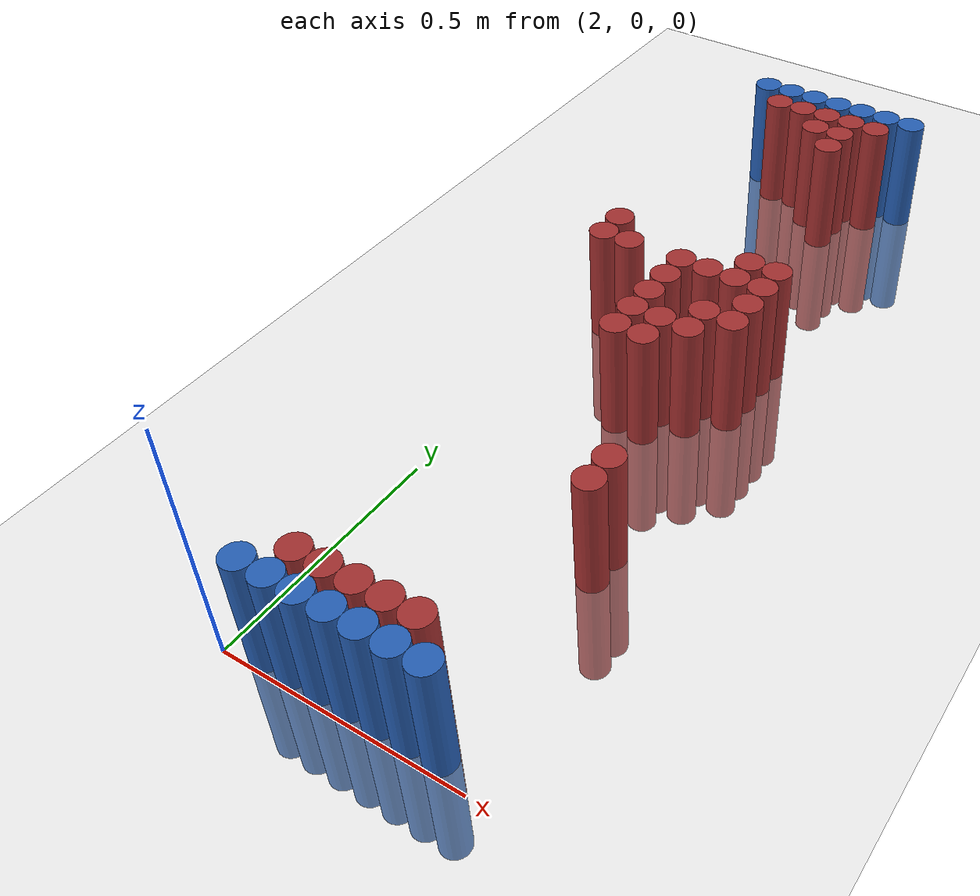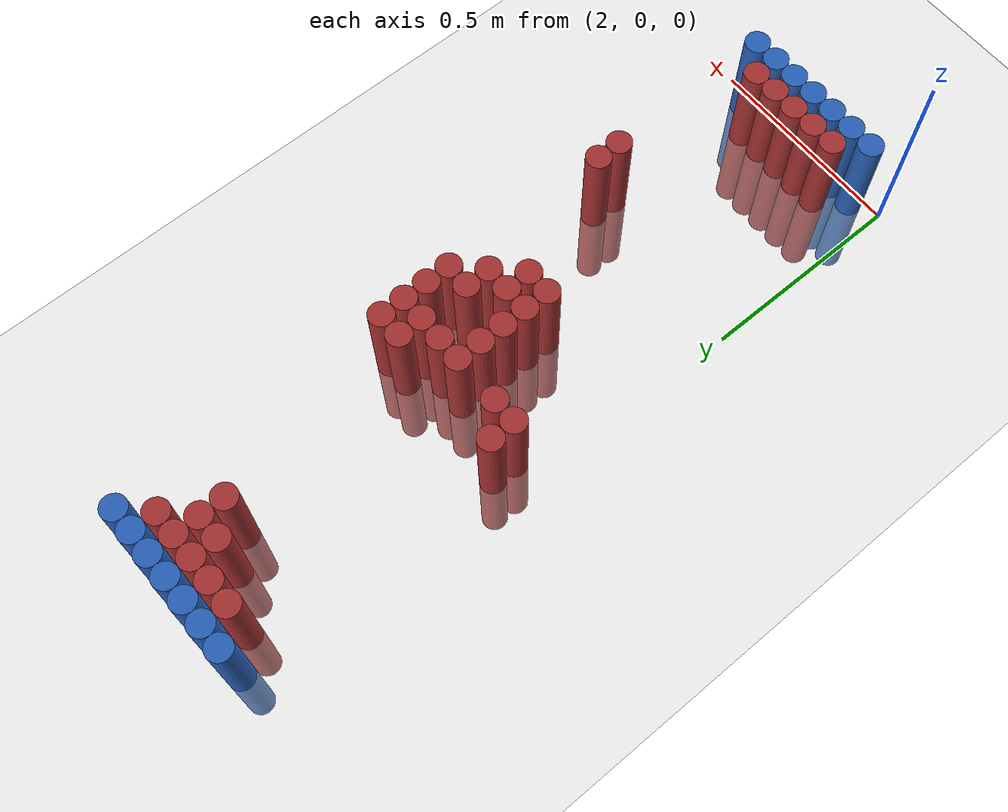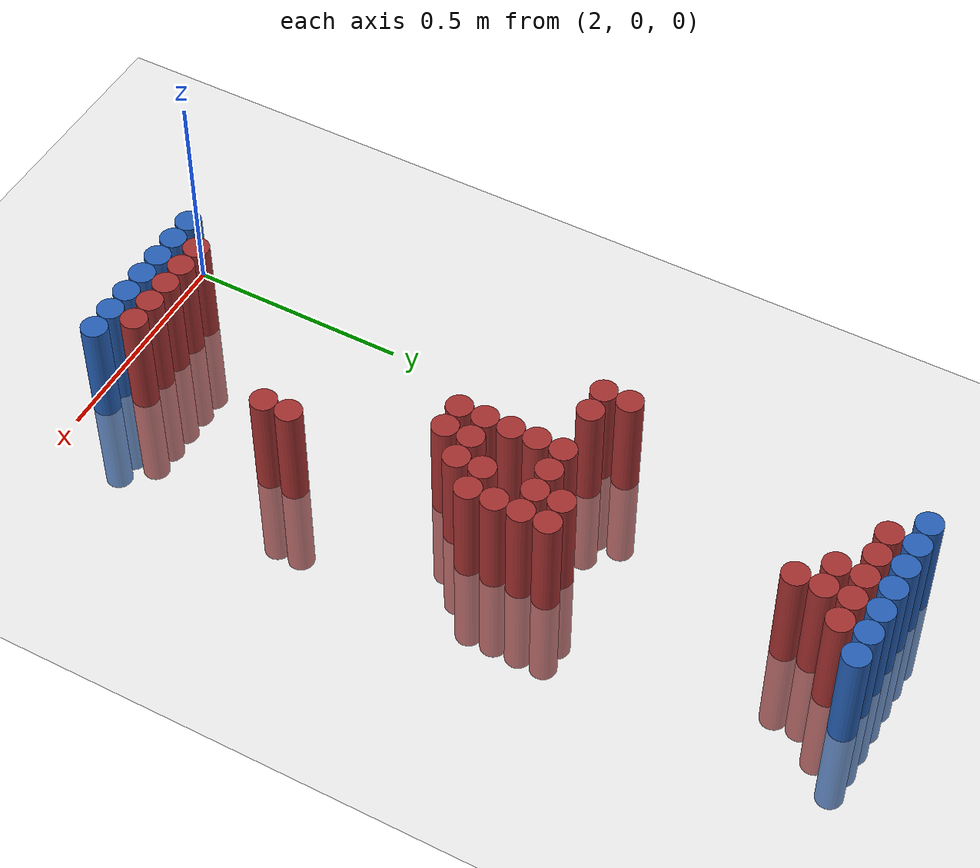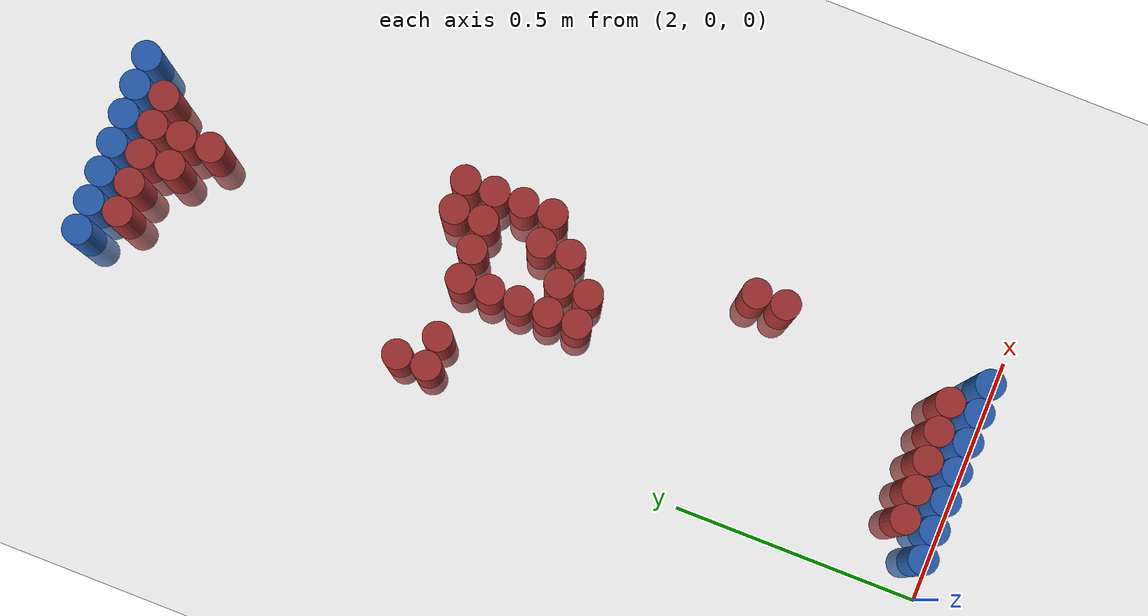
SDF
<sdf version="1.6">
 <world name="default">
  <model name="ground_plane">
   <static>1</static>
   <link name="link">
    <collision name="collision">
     <geometry><plane><normal>0 0 1</normal><size>100 100</size></plane></geometry>
     <surface><friction><ode><mu>100</mu><mu2>50</mu2></ode></friction></surface>
    </collision>
    <visual name="visual">
     <cast_shadows>0</cast_shadows>
     <geometry><plane><normal>0 0 1</normal><size>100 100</size></plane></geometry>
     <material>
      <script><uri>file://media/materials/scripts/gazebo.material</uri><name>Gazebo/Grey</name></script>
     </material>
    </visual>
   </link>
  </model>
  <model name="unit_cylinder_95">
   <static>1</static>
   <pose>2.070000 1.770000 0.000000 0.000000 0.000000 0.000000</pose>
   <link name="link">
    <inertial>
     <mass>1</mass>
     <inertia><ixx>0.145833</ixx><ixy>0</ixy><ixz>0</ixz><iyy>0.145833</iyy><iyz>0</iyz><izz>0.125</izz></inertia>
    </inertial>
    <collision name="collision">
     <geometry><cylinder><radius>0.030000</radius><length>0.5</length></cylinder></geometry>
    </collision>
    <visual name="visual">
     <geometry><cylinder><radius>0.030000</radius><length>0.5</length></cylinder></geometry>
     <material>
      <ambient>0.152000 0.379000 0.720000 1</ambient>
      <diffuse>0.152000 0.379000 0.720000 1</diffuse>
     </material>
     <material>
      <script><name>Gazebo/Grey</name><uri>file://media/materials/scripts/gazebo.material</uri></script>
     </material>
    </visual>
   </link>
  </model>
  <model name="unit_cylinder_96">
   <static>1</static>
   <pose>2.130000 1.770000 0.000000 0.000000 0.000000 0.000000</pose>
   <link name="link">
    <inertial>
     <mass>1</mass>
     <inertia><ixx>0.145833</ixx><ixy>0</ixy><ixz>0</ixz><iyy>0.145833</iyy><iyz>0</iyz><izz>0.125</izz></inertia>
    </inertial>
    <collision name="collision">
     <geometry><cylinder><radius>0.030000</radius><length>0.5</length></cylinder></geometry>
    </collision>
    <visual name="visual">
     <geometry><cylinder><radius>0.030000</radius><length>0.5</length></cylinder></geometry>
     <material>
      <ambient>0.152000 0.379000 0.720000 1</ambient>
      <diffuse>0.152000 0.379000 0.720000 1</diffuse>
     </material>
     <material>
      <script><name>Gazebo/Grey</name><uri>file://media/materials/scripts/gazebo.material</uri></script>
     </material>
    </visual>
   </link>
  </model>
  <model name="unit_cylinder_97">
   <static>1</static>
   <pose>2.190000 1.770000 0.000000 0.000000 0.000000 0.000000</pose>
   <link name="link">
    <inertial>
     <mass>1</mass>
     <inertia><ixx>0.145833</ixx><ixy>0</ixy><ixz>0</ixz><iyy>0.145833</iyy><iyz>0</iyz><izz>0.125</izz></inertia>
    </inertial>
    <collision name="collision">
     <geometry><cylinder><radius>0.030000</radius><length>0.5</length></cylinder></geometry>
    </collision>
    <visual name="visual">
     <geometry><cylinder><radius>0.030000</radius><length>0.5</length></cylinder></geometry>
     <material>
      <ambient>0.152000 0.379000 0.720000 1</ambient>
      <diffuse>0.152000 0.379000 0.720000 1</diffuse>
     </material>
     <material>
      <script><name>Gazebo/Grey</name><uri>file://media/materials/scripts/gazebo.material</uri></script>
     </material>
    </visual>
   </link>
  </model>
  <model name="unit_cylinder_98">
   <static>1</static>
   <pose>2.250000 1.770000 0.000000 0.000000 0.000000 0.000000</pose>
   <link name="link">
    <inertial>
     <mass>1</mass>
     <inertia><ixx>0.145833</ixx><ixy>0</ixy><ixz>0</ixz><iyy>0.145833</iyy><iyz>0</iyz><izz>0.125</izz></inertia>
    </inertial>
    <collision name="collision">
     <geometry><cylinder><radius>0.030000</radius><length>0.5</length></cylinder></geometry>
    </collision>
    <visual name="visual">
     <geometry><cylinder><radius>0.030000</radius><length>0.5</length></cylinder></geometry>
     <material>
      <ambient>0.152000 0.379000 0.720000 1</ambient>
      <diffuse>0.152000 0.379000 0.720000 1</diffuse>
     </material>
     <material>
      <script><name>Gazebo/Grey</name><uri>file://media/materials/scripts/gazebo.material</uri></script>
     </material>
    </visual>
   </link>
  </model>
  <model name="unit_cylinder_99">
   <static>1</static>
   <pose>2.310000 1.770000 0.000000 0.000000 0.000000 0.000000</pose>
   <link name="link">
    <inertial>
     <mass>1</mass>
     <inertia><ixx>0.145833</ixx><ixy>0</ixy><ixz>0</ixz><iyy>0.145833</iyy><iyz>0</iyz><izz>0.125</izz></inertia>
    </inertial>
    <collision name="collision">
     <geometry><cylinder><radius>0.030000</radius><length>0.5</length></cylinder></geometry>
    </collision>
    <visual name="visual">
     <geometry><cylinder><radius>0.030000</radius><length>0.5</length></cylinder></geometry>
     <material>
      <ambient>0.152000 0.379000 0.720000 1</ambient>
      <diffuse>0.152000 0.379000 0.720000 1</diffuse>
     </material>
     <material>
      <script><name>Gazebo/Grey</name><uri>file://media/materials/scripts/gazebo.material</uri></script>
     </material>
    </visual>
   </link>
  </model>
  <model name="unit_cylinder_100">
   <static>1</static>
   <pose>2.370000 1.770000 0.000000 0.000000 0.000000 0.000000</pose>
   <link name="link">
    <inertial>
     <mass>1</mass>
     <inertia><ixx>0.145833</ixx><ixy>0</ixy><ixz>0</ixz><iyy>0.145833</iyy><iyz>0</iyz><izz>0.125</izz></inertia>
    </inertial>
    <collision name="collision">
     <geometry><cylinder><radius>0.030000</radius><length>0.5</length></cylinder></geometry>
    </collision>
    <visual name="visual">
     <geometry><cylinder><radius>0.030000</radius><length>0.5</length></cylinder></geometry>
     <material>
      <ambient>0.152000 0.379000 0.720000 1</ambient>
      <diffuse>0.152000 0.379000 0.720000 1</diffuse>
     </material>
     <material>
      <script><name>Gazebo/Grey</name><uri>file://media/materials/scripts/gazebo.material</uri></script>
     </material>
    </visual>
   </link>
  </model>
  <model name="unit_cylinder_101">
   <static>1</static>
   <pose>2.430000 1.770000 0.000000 0.000000 0.000000 0.000000</pose>
   <link name="link">
    <inertial>
     <mass>1</mass>
     <inertia><ixx>0.145833</ixx><ixy>0</ixy><ixz>0</ixz><iyy>0.145833</iyy><iyz>0</iyz><izz>0.125</izz></inertia>
    </inertial>
    <collision name="collision">
     <geometry><cylinder><radius>0.030000</radius><length>0.5</length></cylinder></geometry>
    </collision>
    <visual name="visual">
     <geometry><cylinder><radius>0.030000</radius><length>0.5</length></cylinder></geometry>
     <material>
      <ambient>0.152000 0.379000 0.720000 1</ambient>
      <diffuse>0.152000 0.379000 0.720000 1</diffuse>
     </material>
     <material>
      <script><name>Gazebo/Grey</name><uri>file://media/materials/scripts/gazebo.material</uri></script>
     </material>
    </visual>
   </link>
  </model>
  <model name="unit_cylinder_125">
   <static>1</static>
   <pose>2.130000 1.710000 0.000000 0.000000 0.000000 0.000000</pose>
   <link name="link">
    <inertial>
     <mass>1</mass>
     <inertia><ixx>0.145833</ixx><ixy>0</ixy><ixz>0</ixz><iyy>0.145833</iyy><iyz>0</iyz><izz>0.125</izz></inertia>
    </inertial>
    <collision name="collision">
     <geometry><cylinder><radius>0.030000</radius><length>0.5</length></cylinder></geometry>
    </collision>
    <visual name="visual">
     <geometry><cylinder><radius>0.030000</radius><length>0.5</length></cylinder></geometry>
     <material>
      <ambient>0.648000 0.192000 0.192000 1</ambient>
      <diffuse>0.648000 0.192000 0.192000 1</diffuse>
     </material>
     <material>
      <script><name>Gazebo/Grey</name><uri>file://media/materials/scripts/gazebo.material</uri></script>
     </material>
    </visual>
   </link>
  </model>
  <model name="unit_cylinder_126">
   <static>1</static>
   <pose>2.190000 1.710000 0.000000 0.000000 0.000000 0.000000</pose>
   <link name="link">
    <inertial>
     <mass>1</mass>
     <inertia><ixx>0.145833</ixx><ixy>0</ixy><ixz>0</ixz><iyy>0.145833</iyy><iyz>0</iyz><izz>0.125</izz></inertia>
    </inertial>
    <collision name="collision">
     <geometry><cylinder><radius>0.030000</radius><length>0.5</length></cylinder></geometry>
    </collision>
    <visual name="visual">
     <geometry><cylinder><radius>0.030000</radius><length>0.5</length></cylinder></geometry>
     <material>
      <ambient>0.648000 0.192000 0.192000 1</ambient>
      <diffuse>0.648000 0.192000 0.192000 1</diffuse>
     </material>
     <material>
      <script><name>Gazebo/Grey</name><uri>file://media/materials/scripts/gazebo.material</uri></script>
     </material>
    </visual>
   </link>
  </model>
  <model name="unit_cylinder_127">
   <static>1</static>
   <pose>2.250000 1.710000 0.000000 0.000000 0.000000 0.000000</pose>
   <link name="link">
    <inertial>
     <mass>1</mass>
     <inertia><ixx>0.145833</ixx><ixy>0</ixy><ixz>0</ixz><iyy>0.145833</iyy><iyz>0</iyz><izz>0.125</izz></inertia>
    </inertial>
    <collision name="collision">
     <geometry><cylinder><radius>0.030000</radius><length>0.5</length></cylinder></geometry>
    </collision>
    <visual name="visual">
     <geometry><cylinder><radius>0.030000</radius><length>0.5</length></cylinder></geometry>
     <material>
      <ambient>0.648000 0.192000 0.192000 1</ambient>
      <diffuse>0.648000 0.192000 0.192000 1</diffuse>
     </material>
     <material>
      <script><name>Gazebo/Grey</name><uri>file://media/materials/scripts/gazebo.material</uri></script>
     </material>
    </visual>
   </link>
  </model>
  <model name="unit_cylinder_128">
   <static>1</static>
   <pose>2.310000 1.710000 0.000000 0.000000 0.000000 0.000000</pose>
   <link name="link">
    <inertial>
     <mass>1</mass>
     <inertia><ixx>0.145833</ixx><ixy>0</ixy><ixz>0</ixz><iyy>0.145833</iyy><iyz>0</iyz><izz>0.125</izz></inertia>
    </inertial>
    <collision name="collision">
     <geometry><cylinder><radius>0.030000</radius><length>0.5</length></cylinder></geometry>
    </collision>
    <visual name="visual">
     <geometry><cylinder><radius>0.030000</radius><length>0.5</length></cylinder></geometry>
     <material>
      <ambient>0.648000 0.192000 0.192000 1</ambient>
      <diffuse>0.648000 0.192000 0.192000 1</diffuse>
     </material>
     <material>
      <script><name>Gazebo/Grey</name><uri>file://media/materials/scripts/gazebo.material</uri></script>
     </material>
    </visual>
   </link>
  </model>
  <model name="unit_cylinder_129">
   <static>1</static>
   <pose>2.370000 1.710000 0.000000 0.000000 0.000000 0.000000</pose>
   <link name="link">
    <inertial>
     <mass>1</mass>
     <inertia><ixx>0.145833</ixx><ixy>0</ixy><ixz>0</ixz><iyy>0.145833</iyy><iyz>0</iyz><izz>0.125</izz></inertia>
    </inertial>
    <collision name="collision">
     <geometry><cylinder><radius>0.030000</radius><length>0.5</length></cylinder></geometry>
    </collision>
    <visual name="visual">
     <geometry><cylinder><radius>0.030000</radius><length>0.5</length></cylinder></geometry>
     <material>
      <ambient>0.648000 0.192000 0.192000 1</ambient>
      <diffuse>0.648000 0.192000 0.192000 1</diffuse>
     </material>
     <material>
      <script><name>Gazebo/Grey</name><uri>file://media/materials/scripts/gazebo.material</uri></script>
     </material>
    </visual>
   </link>
  </model>
  <model name="unit_cylinder_140">
   <static>1</static>
   <pose>2.250000 1.650000 0.000000 0.000000 0.000000 0.000000</pose>
   <link name="link">
    <inertial>
     <mass>1</mass>
     <inertia><ixx>0.145833</ixx><ixy>0</ixy><ixz>0</ixz><iyy>0.145833</iyy><iyz>0</iyz><izz>0.125</izz></inertia>
    </inertial>
    <collision name="collision">
     <geometry><cylinder><radius>0.030000</radius><length>0.5</length></cylinder></geometry>
    </collision>
    <visual name="visual">
     <geometry><cylinder><radius>0.030000</radius><length>0.5</length></cylinder></geometry>
     <material>
      <ambient>0.648000 0.192000 0.192000 1</ambient>
      <diffuse>0.648000 0.192000 0.192000 1</diffuse>
     </material>
     <material>
      <script><name>Gazebo/Grey</name><uri>file://media/materials/scripts/gazebo.material</uri></script>
     </material>
    </visual>
   </link>
  </model>
  <model name="unit_cylinder_141">
   <static>1</static>
   <pose>2.310000 1.650000 0.000000 0.000000 0.000000 0.000000</pose>
   <link name="link">
    <inertial>
     <mass>1</mass>
     <inertia><ixx>0.145833</ixx><ixy>0</ixy><ixz>0</ixz><iyy>0.145833</iyy><iyz>0</iyz><izz>0.125</izz></inertia>
    </inertial>
    <collision name="collision">
     <geometry><cylinder><radius>0.030000</radius><length>0.5</length></cylinder></geometry>
    </collision>
    <visual name="visual">
     <geometry><cylinder><radius>0.030000</radius><length>0.5</length></cylinder></geometry>
     <material>
      <ambient>0.648000 0.192000 0.192000 1</ambient>
      <diffuse>0.648000 0.192000 0.192000 1</diffuse>
     </material>
     <material>
      <script><name>Gazebo/Grey</name><uri>file://media/materials/scripts/gazebo.material</uri></script>
     </material>
    </visual>
   </link>
  </model>
  <model name="unit_cylinder_151">
   <static>1</static>
   <pose>2.310000 1.590000 0.000000 0.000000 0.000000 0.000000</pose>
   <link name="link">
    <inertial>
     <mass>1</mass>
     <inertia><ixx>0.145833</ixx><ixy>0</ixy><ixz>0</ixz><iyy>0.145833</iyy><iyz>0</iyz><izz>0.125</izz></inertia>
    </inertial>
    <collision name="collision">
     <geometry><cylinder><radius>0.030000</radius><length>0.5</length></cylinder></geometry>
    </collision>
    <visual name="visual">
     <geometry><cylinder><radius>0.030000</radius><length>0.5</length></cylinder></geometry>
     <material>
      <ambient>0.648000 0.192000 0.192000 1</ambient>
      <diffuse>0.648000 0.192000 0.192000 1</diffuse>
     </material>
     <material>
      <script><name>Gazebo/Grey</name><uri>file://media/materials/scripts/gazebo.material</uri></script>
     </material>
    </visual>
   </link>
  </model>
  <model name="unit_cylinder_172">
   <static>1</static>
   <pose>2.070000 1.110000 0.000000 0.000000 0.000000 0.000000</pose>
   <link name="link">
    <inertial>
     <mass>1</mass>
     <inertia><ixx>0.145833</ixx><ixy>0</ixy><ixz>0</ixz><iyy>0.145833</iyy><iyz>0</iyz><izz>0.125</izz></inertia>
    </inertial>
    <collision name="collision">
     <geometry><cylinder><radius>0.030000</radius><length>0.5</length></cylinder></geometry>
    </collision>
    <visual name="visual">
     <geometry><cylinder><radius>0.030000</radius><length>0.5</length></cylinder></geometry>
     <material>
      <ambient>0.648000 0.192000 0.192000 1</ambient>
      <diffuse>0.648000 0.192000 0.192000 1</diffuse>
     </material>
     <material>
      <script><name>Gazebo/Grey</name><uri>file://media/materials/scripts/gazebo.material</uri></script>
     </material>
    </visual>
   </link>
  </model>
  <model name="unit_cylinder_173">
   <static>1</static>
   <pose>2.370000 1.110000 0.000000 0.000000 0.000000 0.000000</pose>
   <link name="link">
    <inertial>
     <mass>1</mass>
     <inertia><ixx>0.145833</ixx><ixy>0</ixy><ixz>0</ixz><iyy>0.145833</iyy><iyz>0</iyz><izz>0.125</izz></inertia>
    </inertial>
    <collision name="collision">
     <geometry><cylinder><radius>0.030000</radius><length>0.5</length></cylinder></geometry>
    </collision>
    <visual name="visual">
     <geometry><cylinder><radius>0.030000</radius><length>0.5</length></cylinder></geometry>
     <material>
      <ambient>0.648000 0.192000 0.192000 1</ambient>
      <diffuse>0.648000 0.192000 0.192000 1</diffuse>
     </material>
     <material>
      <script><name>Gazebo/Grey</name><uri>file://media/materials/scripts/gazebo.material</uri></script>
     </material>
    </visual>
   </link>
  </model>
  <model name="unit_cylinder_174">
   <static>1</static>
   <pose>2.430000 1.110000 0.000000 0.000000 0.000000 0.000000</pose>
   <link name="link">
    <inertial>
     <mass>1</mass>
     <inertia><ixx>0.145833</ixx><ixy>0</ixy><ixz>0</ixz><iyy>0.145833</iyy><iyz>0</iyz><izz>0.125</izz></inertia>
    </inertial>
    <collision name="collision">
     <geometry><cylinder><radius>0.030000</radius><length>0.5</length></cylinder></geometry>
    </collision>
    <visual name="visual">
     <geometry><cylinder><radius>0.030000</radius><length>0.5</length></cylinder></geometry>
     <material>
      <ambient>0.648000 0.192000 0.192000 1</ambient>
      <diffuse>0.648000 0.192000 0.192000 1</diffuse>
     </material>
     <material>
      <script><name>Gazebo/Grey</name><uri>file://media/materials/scripts/gazebo.material</uri></script>
     </material>
    </visual>
   </link>
  </model>
  <model name="unit_cylinder_179">
   <static>1</static>
   <pose>2.070000 1.050000 0.000000 0.000000 0.000000 0.000000</pose>
   <link name="link">
    <inertial>
     <mass>1</mass>
     <inertia><ixx>0.145833</ixx><ixy>0</ixy><ixz>0</ixz><iyy>0.145833</iyy><iyz>0</iyz><izz>0.125</izz></inertia>
    </inertial>
    <collision name="collision">
     <geometry><cylinder><radius>0.030000</radius><length>0.5</length></cylinder></geometry>
    </collision>
    <visual name="visual">
     <geometry><cylinder><radius>0.030000</radius><length>0.5</length></cylinder></geometry>
     <material>
      <ambient>0.648000 0.192000 0.192000 1</ambient>
      <diffuse>0.648000 0.192000 0.192000 1</diffuse>
     </material>
     <material>
      <script><name>Gazebo/Grey</name><uri>file://media/materials/scripts/gazebo.material</uri></script>
     </material>
    </visual>
   </link>
  </model>
  <model name="unit_cylinder_180">
   <static>1</static>
   <pose>2.130000 1.050000 0.000000 0.000000 0.000000 0.000000</pose>
   <link name="link">
    <inertial>
     <mass>1</mass>
     <inertia><ixx>0.145833</ixx><ixy>0</ixy><ixz>0</ixz><iyy>0.145833</iyy><iyz>0</iyz><izz>0.125</izz></inertia>
    </inertial>
    <collision name="collision">
     <geometry><cylinder><radius>0.030000</radius><length>0.5</length></cylinder></geometry>
    </collision>
    <visual name="visual">
     <geometry><cylinder><radius>0.030000</radius><length>0.5</length></cylinder></geometry>
     <material>
      <ambient>0.648000 0.192000 0.192000 1</ambient>
      <diffuse>0.648000 0.192000 0.192000 1</diffuse>
     </material>
     <material>
      <script><name>Gazebo/Grey</name><uri>file://media/materials/scripts/gazebo.material</uri></script>
     </material>
    </visual>
   </link>
  </model>
  <model name="unit_cylinder_181">
   <static>1</static>
   <pose>2.250000 1.050000 0.000000 0.000000 0.000000 0.000000</pose>
   <link name="link">
    <inertial>
     <mass>1</mass>
     <inertia><ixx>0.145833</ixx><ixy>0</ixy><ixz>0</ixz><iyy>0.145833</iyy><iyz>0</iyz><izz>0.125</izz></inertia>
    </inertial>
    <collision name="collision">
     <geometry><cylinder><radius>0.030000</radius><length>0.5</length></cylinder></geometry>
    </collision>
    <visual name="visual">
     <geometry><cylinder><radius>0.030000</radius><length>0.5</length></cylinder></geometry>
     <material>
      <ambient>0.648000 0.192000 0.192000 1</ambient>
      <diffuse>0.648000 0.192000 0.192000 1</diffuse>
     </material>
     <material>
      <script><name>Gazebo/Grey</name><uri>file://media/materials/scripts/gazebo.material</uri></script>
     </material>
    </visual>
   </link>
  </model>
  <model name="unit_cylinder_182">
   <static>1</static>
   <pose>2.310000 1.050000 0.000000 0.000000 0.000000 0.000000</pose>
   <link name="link">
    <inertial>
     <mass>1</mass>
     <inertia><ixx>0.145833</ixx><ixy>0</ixy><ixz>0</ixz><iyy>0.145833</iyy><iyz>0</iyz><izz>0.125</izz></inertia>
    </inertial>
    <collision name="collision">
     <geometry><cylinder><radius>0.030000</radius><length>0.5</length></cylinder></geometry>
    </collision>
    <visual name="visual">
     <geometry><cylinder><radius>0.030000</radius><length>0.5</length></cylinder></geometry>
     <material>
      <ambient>0.648000 0.192000 0.192000 1</ambient>
      <diffuse>0.648000 0.192000 0.192000 1</diffuse>
     </material>
     <material>
      <script><name>Gazebo/Grey</name><uri>file://media/materials/scripts/gazebo.material</uri></script>
     </material>
    </visual>
   </link>
  </model>
  <model name="unit_cylinder_183">
   <static>1</static>
   <pose>2.370000 1.050000 0.000000 0.000000 0.000000 0.000000</pose>
   <link name="link">
    <inertial>
     <mass>1</mass>
     <inertia><ixx>0.145833</ixx><ixy>0</ixy><ixz>0</ixz><iyy>0.145833</iyy><iyz>0</iyz><izz>0.125</izz></inertia>
    </inertial>
    <collision name="collision">
     <geometry><cylinder><radius>0.030000</radius><length>0.5</length></cylinder></geometry>
    </collision>
    <visual name="visual">
     <geometry><cylinder><radius>0.030000</radius><length>0.5</length></cylinder></geometry>
     <material>
      <ambient>0.648000 0.192000 0.192000 1</ambient>
      <diffuse>0.648000 0.192000 0.192000 1</diffuse>
     </material>
     <material>
      <script><name>Gazebo/Grey</name><uri>file://media/materials/scripts/gazebo.material</uri></script>
     </material>
    </visual>
   </link>
  </model>
  <model name="unit_cylinder_184">
   <static>1</static>
   <pose>2.430000 1.050000 0.000000 0.000000 0.000000 0.000000</pose>
   <link name="link">
    <inertial>
     <mass>1</mass>
     <inertia><ixx>0.145833</ixx><ixy>0</ixy><ixz>0</ixz><iyy>0.145833</iyy><iyz>0</iyz><izz>0.125</izz></inertia>
    </inertial>
    <collision name="collision">
     <geometry><cylinder><radius>0.030000</radius><length>0.5</length></cylinder></geometry>
    </collision>
    <visual name="visual">
     <geometry><cylinder><radius>0.030000</radius><length>0.5</length></cylinder></geometry>
     <material>
      <ambient>0.648000 0.192000 0.192000 1</ambient>
      <diffuse>0.648000 0.192000 0.192000 1</diffuse>
     </material>
     <material>
      <script><name>Gazebo/Grey</name><uri>file://media/materials/scripts/gazebo.material</uri></script>
     </material>
    </visual>
   </link>
  </model>
  <model name="unit_cylinder_192">
   <static>1</static>
   <pose>2.250000 0.990000 0.000000 0.000000 0.000000 0.000000</pose>
   <link name="link">
    <inertial>
     <mass>1</mass>
     <inertia><ixx>0.145833</ixx><ixy>0</ixy><ixz>0</ixz><iyy>0.145833</iyy><iyz>0</iyz><izz>0.125</izz></inertia>
    </inertial>
    <collision name="collision">
     <geometry><cylinder><radius>0.030000</radius><length>0.5</length></cylinder></geometry>
    </collision>
    <visual name="visual">
     <geometry><cylinder><radius>0.030000</radius><length>0.5</length></cylinder></geometry>
     <material>
      <ambient>0.648000 0.192000 0.192000 1</ambient>
      <diffuse>0.648000 0.192000 0.192000 1</diffuse>
     </material>
     <material>
      <script><name>Gazebo/Grey</name><uri>file://media/materials/scripts/gazebo.material</uri></script>
     </material>
    </visual>
   </link>
  </model>
  <model name="unit_cylinder_193">
   <static>1</static>
   <pose>2.430000 0.990000 0.000000 0.000000 0.000000 0.000000</pose>
   <link name="link">
    <inertial>
     <mass>1</mass>
     <inertia><ixx>0.145833</ixx><ixy>0</ixy><ixz>0</ixz><iyy>0.145833</iyy><iyz>0</iyz><izz>0.125</izz></inertia>
    </inertial>
    <collision name="collision">
     <geometry><cylinder><radius>0.030000</radius><length>0.5</length></cylinder></geometry>
    </collision>
    <visual name="visual">
     <geometry><cylinder><radius>0.030000</radius><length>0.5</length></cylinder></geometry>
     <material>
      <ambient>0.648000 0.192000 0.192000 1</ambient>
      <diffuse>0.648000 0.192000 0.192000 1</diffuse>
     </material>
     <material>
      <script><name>Gazebo/Grey</name><uri>file://media/materials/scripts/gazebo.material</uri></script>
     </material>
    </visual>
   </link>
  </model>
  <model name="unit_cylinder_202">
   <static>1</static>
   <pose>2.250000 0.930000 0.000000 0.000000 0.000000 0.000000</pose>
   <link name="link">
    <inertial>
     <mass>1</mass>
     <inertia><ixx>0.145833</ixx><ixy>0</ixy><ixz>0</ixz><iyy>0.145833</iyy><iyz>0</iyz><izz>0.125</izz></inertia>
    </inertial>
    <collision name="collision">
     <geometry><cylinder><radius>0.030000</radius><length>0.5</length></cylinder></geometry>
    </collision>
    <visual name="visual">
     <geometry><cylinder><radius>0.030000</radius><length>0.5</length></cylinder></geometry>
     <material>
      <ambient>0.648000 0.192000 0.192000 1</ambient>
      <diffuse>0.648000 0.192000 0.192000 1</diffuse>
     </material>
     <material>
      <script><name>Gazebo/Grey</name><uri>file://media/materials/scripts/gazebo.material</uri></script>
     </material>
    </visual>
   </link>
  </model>
  <model name="unit_cylinder_203">
   <static>1</static>
   <pose>2.370000 0.930000 0.000000 0.000000 0.000000 0.000000</pose>
   <link name="link">
    <inertial>
     <mass>1</mass>
     <inertia><ixx>0.145833</ixx><ixy>0</ixy><ixz>0</ixz><iyy>0.145833</iyy><iyz>0</iyz><izz>0.125</izz></inertia>
    </inertial>
    <collision name="collision">
     <geometry><cylinder><radius>0.030000</radius><length>0.5</length></cylinder></geometry>
    </collision>
    <visual name="visual">
     <geometry><cylinder><radius>0.030000</radius><length>0.5</length></cylinder></geometry>
     <material>
      <ambient>0.648000 0.192000 0.192000 1</ambient>
      <diffuse>0.648000 0.192000 0.192000 1</diffuse>
     </material>
     <material>
      <script><name>Gazebo/Grey</name><uri>file://media/materials/scripts/gazebo.material</uri></script>
     </material>
    </visual>
   </link>
  </model>
  <model name="unit_cylinder_204">
   <static>1</static>
   <pose>2.430000 0.930000 0.000000 0.000000 0.000000 0.000000</pose>
   <link name="link">
    <inertial>
     <mass>1</mass>
     <inertia><ixx>0.145833</ixx><ixy>0</ixy><ixz>0</ixz><iyy>0.145833</iyy><iyz>0</iyz><izz>0.125</izz></inertia>
    </inertial>
    <collision name="collision">
     <geometry><cylinder><radius>0.030000</radius><length>0.5</length></cylinder></geometry>
    </collision>
    <visual name="visual">
     <geometry><cylinder><radius>0.030000</radius><length>0.5</length></cylinder></geometry>
     <material>
      <ambient>0.648000 0.192000 0.192000 1</ambient>
      <diffuse>0.648000 0.192000 0.192000 1</diffuse>
     </material>
     <material>
      <script><name>Gazebo/Grey</name><uri>file://media/materials/scripts/gazebo.material</uri></script>
     </material>
    </visual>
   </link>
  </model>
  <model name="unit_cylinder_213">
   <static>1</static>
   <pose>2.250000 0.870000 0.000000 0.000000 0.000000 0.000000</pose>
   <link name="link">
    <inertial>
     <mass>1</mass>
     <inertia><ixx>0.145833</ixx><ixy>0</ixy><ixz>0</ixz><iyy>0.145833</iyy><iyz>0</iyz><izz>0.125</izz></inertia>
    </inertial>
    <collision name="collision">
     <geometry><cylinder><radius>0.030000</radius><length>0.5</length></cylinder></geometry>
    </collision>
    <visual name="visual">
     <geometry><cylinder><radius>0.030000</radius><length>0.5</length></cylinder></geometry>
     <material>
      <ambient>0.648000 0.192000 0.192000 1</ambient>
      <diffuse>0.648000 0.192000 0.192000 1</diffuse>
     </material>
     <material>
      <script><name>Gazebo/Grey</name><uri>file://media/materials/scripts/gazebo.material</uri></script>
     </material>
    </visual>
   </link>
  </model>
  <model name="unit_cylinder_214">
   <static>1</static>
   <pose>2.310000 0.870000 0.000000 0.000000 0.000000 0.000000</pose>
   <link name="link">
    <inertial>
     <mass>1</mass>
     <inertia><ixx>0.145833</ixx><ixy>0</ixy><ixz>0</ixz><iyy>0.145833</iyy><iyz>0</iyz><izz>0.125</izz></inertia>
    </inertial>
    <collision name="collision">
     <geometry><cylinder><radius>0.030000</radius><length>0.5</length></cylinder></geometry>
    </collision>
    <visual name="visual">
     <geometry><cylinder><radius>0.030000</radius><length>0.5</length></cylinder></geometry>
     <material>
      <ambient>0.648000 0.192000 0.192000 1</ambient>
      <diffuse>0.648000 0.192000 0.192000 1</diffuse>
     </material>
     <material>
      <script><name>Gazebo/Grey</name><uri>file://media/materials/scripts/gazebo.material</uri></script>
     </material>
    </visual>
   </link>
  </model>
  <model name="unit_cylinder_215">
   <static>1</static>
   <pose>2.370000 0.870000 0.000000 0.000000 0.000000 0.000000</pose>
   <link name="link">
    <inertial>
     <mass>1</mass>
     <inertia><ixx>0.145833</ixx><ixy>0</ixy><ixz>0</ixz><iyy>0.145833</iyy><iyz>0</iyz><izz>0.125</izz></inertia>
    </inertial>
    <collision name="collision">
     <geometry><cylinder><radius>0.030000</radius><length>0.5</length></cylinder></geometry>
    </collision>
    <visual name="visual">
     <geometry><cylinder><radius>0.030000</radius><length>0.5</length></cylinder></geometry>
     <material>
      <ambient>0.648000 0.192000 0.192000 1</ambient>
      <diffuse>0.648000 0.192000 0.192000 1</diffuse>
     </material>
     <material>
      <script><name>Gazebo/Grey</name><uri>file://media/materials/scripts/gazebo.material</uri></script>
     </material>
    </visual>
   </link>
  </model>
  <model name="unit_cylinder_228">
   <static>1</static>
   <pose>2.250000 0.810000 0.000000 0.000000 0.000000 0.000000</pose>
   <link name="link">
    <inertial>
     <mass>1</mass>
     <inertia><ixx>0.145833</ixx><ixy>0</ixy><ixz>0</ixz><iyy>0.145833</iyy><iyz>0</iyz><izz>0.125</izz></inertia>
    </inertial>
    <collision name="collision">
     <geometry><cylinder><radius>0.030000</radius><length>0.5</length></cylinder></geometry>
    </collision>
    <visual name="visual">
     <geometry><cylinder><radius>0.030000</radius><length>0.5</length></cylinder></geometry>
     <material>
      <ambient>0.648000 0.192000 0.192000 1</ambient>
      <diffuse>0.648000 0.192000 0.192000 1</diffuse>
     </material>
     <material>
      <script><name>Gazebo/Grey</name><uri>file://media/materials/scripts/gazebo.material</uri></script>
     </material>
    </visual>
   </link>
  </model>
  <model name="unit_cylinder_229">
   <static>1</static>
   <pose>2.310000 0.810000 0.000000 0.000000 0.000000 0.000000</pose>
   <link name="link">
    <inertial>
     <mass>1</mass>
     <inertia><ixx>0.145833</ixx><ixy>0</ixy><ixz>0</ixz><iyy>0.145833</iyy><iyz>0</iyz><izz>0.125</izz></inertia>
    </inertial>
    <collision name="collision">
     <geometry><cylinder><radius>0.030000</radius><length>0.5</length></cylinder></geometry>
    </collision>
    <visual name="visual">
     <geometry><cylinder><radius>0.030000</radius><length>0.5</length></cylinder></geometry>
     <material>
      <ambient>0.648000 0.192000 0.192000 1</ambient>
      <diffuse>0.648000 0.192000 0.192000 1</diffuse>
     </material>
     <material>
      <script><name>Gazebo/Grey</name><uri>file://media/materials/scripts/gazebo.material</uri></script>
     </material>
    </visual>
   </link>
  </model>
  <model name="unit_cylinder_259">
   <static>1</static>
   <pose>2.430000 0.510000 0.000000 0.000000 0.000000 0.000000</pose>
   <link name="link">
    <inertial>
     <mass>1</mass>
     <inertia><ixx>0.145833</ixx><ixy>0</ixy><ixz>0</ixz><iyy>0.145833</iyy><iyz>0</iyz><izz>0.125</izz></inertia>
    </inertial>
    <collision name="collision">
     <geometry><cylinder><radius>0.030000</radius><length>0.5</length></cylinder></geometry>
    </collision>
    <visual name="visual">
     <geometry><cylinder><radius>0.030000</radius><length>0.5</length></cylinder></geometry>
     <material>
      <ambient>0.648000 0.192000 0.192000 1</ambient>
      <diffuse>0.648000 0.192000 0.192000 1</diffuse>
     </material>
     <material>
      <script><name>Gazebo/Grey</name><uri>file://media/materials/scripts/gazebo.material</uri></script>
     </material>
    </visual>
   </link>
  </model>
  <model name="unit_cylinder_266">
   <static>1</static>
   <pose>2.430000 0.450000 0.000000 0.000000 0.000000 0.000000</pose>
   <link name="link">
    <inertial>
     <mass>1</mass>
     <inertia><ixx>0.145833</ixx><ixy>0</ixy><ixz>0</ixz><iyy>0.145833</iyy><iyz>0</iyz><izz>0.125</izz></inertia>
    </inertial>
    <collision name="collision">
     <geometry><cylinder><radius>0.030000</radius><length>0.5</length></cylinder></geometry>
    </collision>
    <visual name="visual">
     <geometry><cylinder><radius>0.030000</radius><length>0.5</length></cylinder></geometry>
     <material>
      <ambient>0.648000 0.192000 0.192000 1</ambient>
      <diffuse>0.648000 0.192000 0.192000 1</diffuse>
     </material>
     <material>
      <script><name>Gazebo/Grey</name><uri>file://media/materials/scripts/gazebo.material</uri></script>
     </material>
    </visual>
   </link>
  </model>
  <model name="unit_cylinder_287">
   <static>1</static>
   <pose>2.130000 0.090000 0.000000 0.000000 0.000000 0.000000</pose>
   <link name="link">
    <inertial>
     <mass>1</mass>
     <inertia><ixx>0.145833</ixx><ixy>0</ixy><ixz>0</ixz><iyy>0.145833</iyy><iyz>0</iyz><izz>0.125</izz></inertia>
    </inertial>
    <collision name="collision">
     <geometry><cylinder><radius>0.030000</radius><length>0.5</length></cylinder></geometry>
    </collision>
    <visual name="visual">
     <geometry><cylinder><radius>0.030000</radius><length>0.5</length></cylinder></geometry>
     <material>
      <ambient>0.648000 0.192000 0.192000 1</ambient>
      <diffuse>0.648000 0.192000 0.192000 1</diffuse>
     </material>
     <material>
      <script><name>Gazebo/Grey</name><uri>file://media/materials/scripts/gazebo.material</uri></script>
     </material>
    </visual>
   </link>
  </model>
  <model name="unit_cylinder_288">
   <static>1</static>
   <pose>2.190000 0.090000 0.000000 0.000000 0.000000 0.000000</pose>
   <link name="link">
    <inertial>
     <mass>1</mass>
     <inertia><ixx>0.145833</ixx><ixy>0</ixy><ixz>0</ixz><iyy>0.145833</iyy><iyz>0</iyz><izz>0.125</izz></inertia>
    </inertial>
    <collision name="collision">
     <geometry><cylinder><radius>0.030000</radius><length>0.5</length></cylinder></geometry>
    </collision>
    <visual name="visual">
     <geometry><cylinder><radius>0.030000</radius><length>0.5</length></cylinder></geometry>
     <material>
      <ambient>0.648000 0.192000 0.192000 1</ambient>
      <diffuse>0.648000 0.192000 0.192000 1</diffuse>
     </material>
     <material>
      <script><name>Gazebo/Grey</name><uri>file://media/materials/scripts/gazebo.material</uri></script>
     </material>
    </visual>
   </link>
  </model>
  <model name="unit_cylinder_289">
   <static>1</static>
   <pose>2.250000 0.090000 0.000000 0.000000 0.000000 0.000000</pose>
   <link name="link">
    <inertial>
     <mass>1</mass>
     <inertia><ixx>0.145833</ixx><ixy>0</ixy><ixz>0</ixz><iyy>0.145833</iyy><iyz>0</iyz><izz>0.125</izz></inertia>
    </inertial>
    <collision name="collision">
     <geometry><cylinder><radius>0.030000</radius><length>0.5</length></cylinder></geometry>
    </collision>
    <visual name="visual">
     <geometry><cylinder><radius>0.030000</radius><length>0.5</length></cylinder></geometry>
     <material>
      <ambient>0.648000 0.192000 0.192000 1</ambient>
      <diffuse>0.648000 0.192000 0.192000 1</diffuse>
     </material>
     <material>
      <script><name>Gazebo/Grey</name><uri>file://media/materials/scripts/gazebo.material</uri></script>
     </material>
    </visual>
   </link>
  </model>
  <model name="unit_cylinder_290">
   <static>1</static>
   <pose>2.310000 0.090000 0.000000 0.000000 0.000000 0.000000</pose>
   <link name="link">
    <inertial>
     <mass>1</mass>
     <inertia><ixx>0.145833</ixx><ixy>0</ixy><ixz>0</ixz><iyy>0.145833</iyy><iyz>0</iyz><izz>0.125</izz></inertia>
    </inertial>
    <collision name="collision">
     <geometry><cylinder><radius>0.030000</radius><length>0.5</length></cylinder></geometry>
    </collision>
    <visual name="visual">
     <geometry><cylinder><radius>0.030000</radius><length>0.5</length></cylinder></geometry>
     <material>
      <ambient>0.648000 0.192000 0.192000 1</ambient>
      <diffuse>0.648000 0.192000 0.192000 1</diffuse>
     </material>
     <material>
      <script><name>Gazebo/Grey</name><uri>file://media/materials/scripts/gazebo.material</uri></script>
     </material>
    </visual>
   </link>
  </model>
  <model name="unit_cylinder_291">
   <static>1</static>
   <pose>2.370000 0.090000 0.000000 0.000000 0.000000 0.000000</pose>
   <link name="link">
    <inertial>
     <mass>1</mass>
     <inertia><ixx>0.145833</ixx><ixy>0</ixy><ixz>0</ixz><iyy>0.145833</iyy><iyz>0</iyz><izz>0.125</izz></inertia>
    </inertial>
    <collision name="collision">
     <geometry><cylinder><radius>0.030000</radius><length>0.5</length></cylinder></geometry>
    </collision>
    <visual name="visual">
     <geometry><cylinder><radius>0.030000</radius><length>0.5</length></cylinder></geometry>
     <material>
      <ambient>0.648000 0.192000 0.192000 1</ambient>
      <diffuse>0.648000 0.192000 0.192000 1</diffuse>
     </material>
     <material>
      <script><name>Gazebo/Grey</name><uri>file://media/materials/scripts/gazebo.material</uri></script>
     </material>
    </visual>
   </link>
  </model>
  <model name="unit_cylinder_303">
   <static>1</static>
   <pose>2.070000 0.030000 0.000000 0.000000 0.000000 0.000000</pose>
   <link name="link">
    <inertial>
     <mass>1</mass>
     <inertia><ixx>0.145833</ixx><ixy>0</ixy><ixz>0</ixz><iyy>0.145833</iyy><iyz>0</iyz><izz>0.125</izz></inertia>
    </inertial>
    <collision name="collision">
     <geometry><cylinder><radius>0.030000</radius><length>0.5</length></cylinder></geometry>
    </collision>
    <visual name="visual">
     <geometry><cylinder><radius>0.030000</radius><length>0.5</length></cylinder></geometry>
     <material>
      <ambient>0.152000 0.379000 0.720000 1</ambient>
      <diffuse>0.152000 0.379000 0.720000 1</diffuse>
     </material>
     <material>
      <script><name>Gazebo/Grey</name><uri>file://media/materials/scripts/gazebo.material</uri></script>
     </material>
    </visual>
   </link>
  </model>
  <model name="unit_cylinder_304">
   <static>1</static>
   <pose>2.130000 0.030000 0.000000 0.000000 0.000000 0.000000</pose>
   <link name="link">
    <inertial>
     <mass>1</mass>
     <inertia><ixx>0.145833</ixx><ixy>0</ixy><ixz>0</ixz><iyy>0.145833</iyy><iyz>0</iyz><izz>0.125</izz></inertia>
    </inertial>
    <collision name="collision">
     <geometry><cylinder><radius>0.030000</radius><length>0.5</length></cylinder></geometry>
    </collision>
    <visual name="visual">
     <geometry><cylinder><radius>0.030000</radius><length>0.5</length></cylinder></geometry>
     <material>
      <ambient>0.152000 0.379000 0.720000 1</ambient>
      <diffuse>0.152000 0.379000 0.720000 1</diffuse>
     </material>
     <material>
      <script><name>Gazebo/Grey</name><uri>file://media/materials/scripts/gazebo.material</uri></script>
     </material>
    </visual>
   </link>
  </model>
  <model name="unit_cylinder_305">
   <static>1</static>
   <pose>2.190000 0.030000 0.000000 0.000000 0.000000 0.000000</pose>
   <link name="link">
    <inertial>
     <mass>1</mass>
     <inertia><ixx>0.145833</ixx><ixy>0</ixy><ixz>0</ixz><iyy>0.145833</iyy><iyz>0</iyz><izz>0.125</izz></inertia>
    </inertial>
    <collision name="collision">
     <geometry><cylinder><radius>0.030000</radius><length>0.5</length></cylinder></geometry>
    </collision>
    <visual name="visual">
     <geometry><cylinder><radius>0.030000</radius><length>0.5</length></cylinder></geometry>
     <material>
      <ambient>0.152000 0.379000 0.720000 1</ambient>
      <diffuse>0.152000 0.379000 0.720000 1</diffuse>
     </material>
     <material>
      <script><name>Gazebo/Grey</name><uri>file://media/materials/scripts/gazebo.material</uri></script>
     </material>
    </visual>
   </link>
  </model>
  <model name="unit_cylinder_306">
   <static>1</static>
   <pose>2.250000 0.030000 0.000000 0.000000 0.000000 0.000000</pose>
   <link name="link">
    <inertial>
     <mass>1</mass>
     <inertia><ixx>0.145833</ixx><ixy>0</ixy><ixz>0</ixz><iyy>0.145833</iyy><iyz>0</iyz><izz>0.125</izz></inertia>
    </inertial>
    <collision name="collision">
     <geometry><cylinder><radius>0.030000</radius><length>0.5</length></cylinder></geometry>
    </collision>
    <visual name="visual">
     <geometry><cylinder><radius>0.030000</radius><length>0.5</length></cylinder></geometry>
     <material>
      <ambient>0.152000 0.379000 0.720000 1</ambient>
      <diffuse>0.152000 0.379000 0.720000 1</diffuse>
     </material>
     <material>
      <script><name>Gazebo/Grey</name><uri>file://media/materials/scripts/gazebo.material</uri></script>
     </material>
    </visual>
   </link>
  </model>
  <model name="unit_cylinder_307">
   <static>1</static>
   <pose>2.310000 0.030000 0.000000 0.000000 0.000000 0.000000</pose>
   <link name="link">
    <inertial>
     <mass>1</mass>
     <inertia><ixx>0.145833</ixx><ixy>0</ixy><ixz>0</ixz><iyy>0.145833</iyy><iyz>0</iyz><izz>0.125</izz></inertia>
    </inertial>
    <collision name="collision">
     <geometry><cylinder><radius>0.030000</radius><length>0.5</length></cylinder></geometry>
    </collision>
    <visual name="visual">
     <geometry><cylinder><radius>0.030000</radius><length>0.5</length></cylinder></geometry>
     <material>
      <ambient>0.152000 0.379000 0.720000 1</ambient>
      <diffuse>0.152000 0.379000 0.720000 1</diffuse>
     </material>
     <material>
      <script><name>Gazebo/Grey</name><uri>file://media/materials/scripts/gazebo.material</uri></script>
     </material>
    </visual>
   </link>
  </model>
  <model name="unit_cylinder_308">
   <static>1</static>
   <pose>2.370000 0.030000 0.000000 0.000000 0.000000 0.000000</pose>
   <link name="link">
    <inertial>
     <mass>1</mass>
     <inertia><ixx>0.145833</ixx><ixy>0</ixy><ixz>0</ixz><iyy>0.145833</iyy><iyz>0</iyz><izz>0.125</izz></inertia>
    </inertial>
    <collision name="collision">
     <geometry><cylinder><radius>0.030000</radius><length>0.5</length></cylinder></geometry>
    </collision>
    <visual name="visual">
     <geometry><cylinder><radius>0.030000</radius><length>0.5</length></cylinder></geometry>
     <material>
      <ambient>0.152000 0.379000 0.720000 1</ambient>
      <diffuse>0.152000 0.379000 0.720000 1</diffuse>
     </material>
     <material>
      <script><name>Gazebo/Grey</name><uri>file://media/materials/scripts/gazebo.material</uri></script>
     </material>
    </visual>
   </link>
  </model>
  <model name="unit_cylinder_309">
   <static>1</static>
   <pose>2.430000 0.030000 0.000000 0.000000 0.000000 0.000000</pose>
   <link name="link">
    <inertial>
     <mass>1</mass>
     <inertia><ixx>0.145833</ixx><ixy>0</ixy><ixz>0</ixz><iyy>0.145833</iyy><iyz>0</iyz><izz>0.125</izz></inertia>
    </inertial>
    <collision name="collision">
     <geometry><cylinder><radius>0.030000</radius><length>0.5</length></cylinder></geometry>
    </collision>
    <visual name="visual">
     <geometry><cylinder><radius>0.030000</radius><length>0.5</length></cylinder></geometry>
     <material>
      <ambient>0.152000 0.379000 0.720000 1</ambient>
      <diffuse>0.152000 0.379000 0.720000 1</diffuse>
     </material>
     <material>
      <script><name>Gazebo/Grey</name><uri>file://media/materials/scripts/gazebo.material</uri></script>
     </material>
    </visual>
   </link>
  </model>
 </world>
</sdf>
